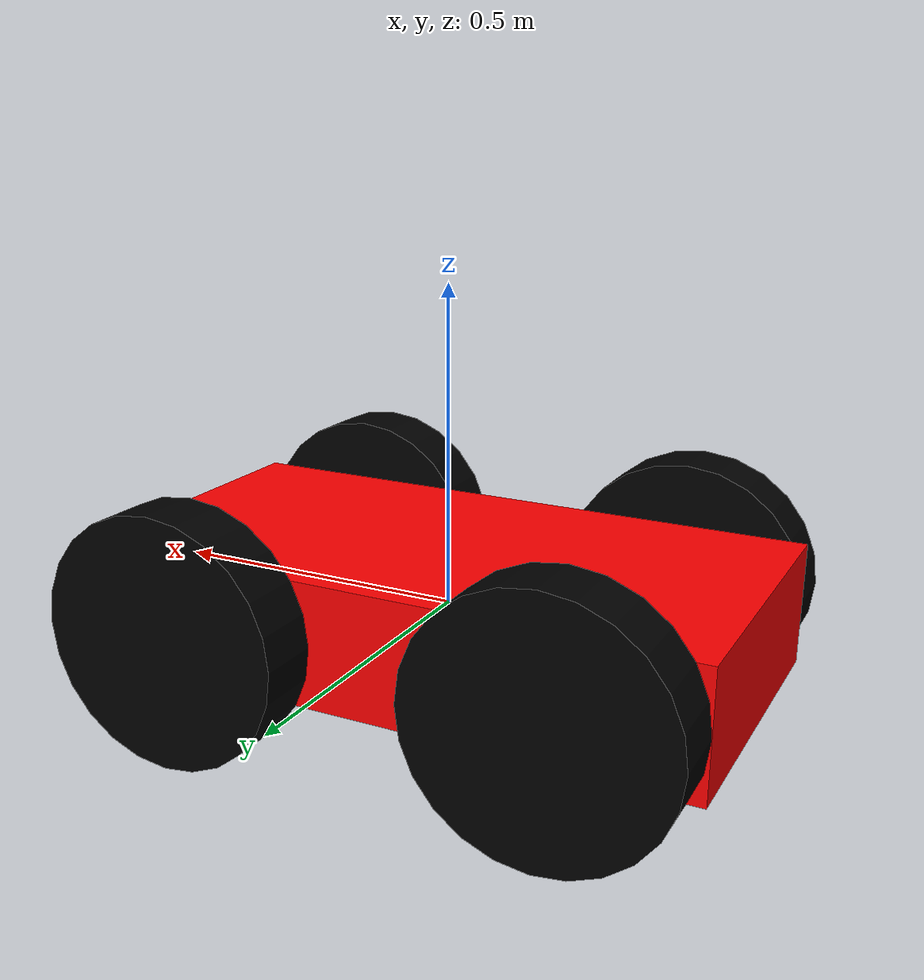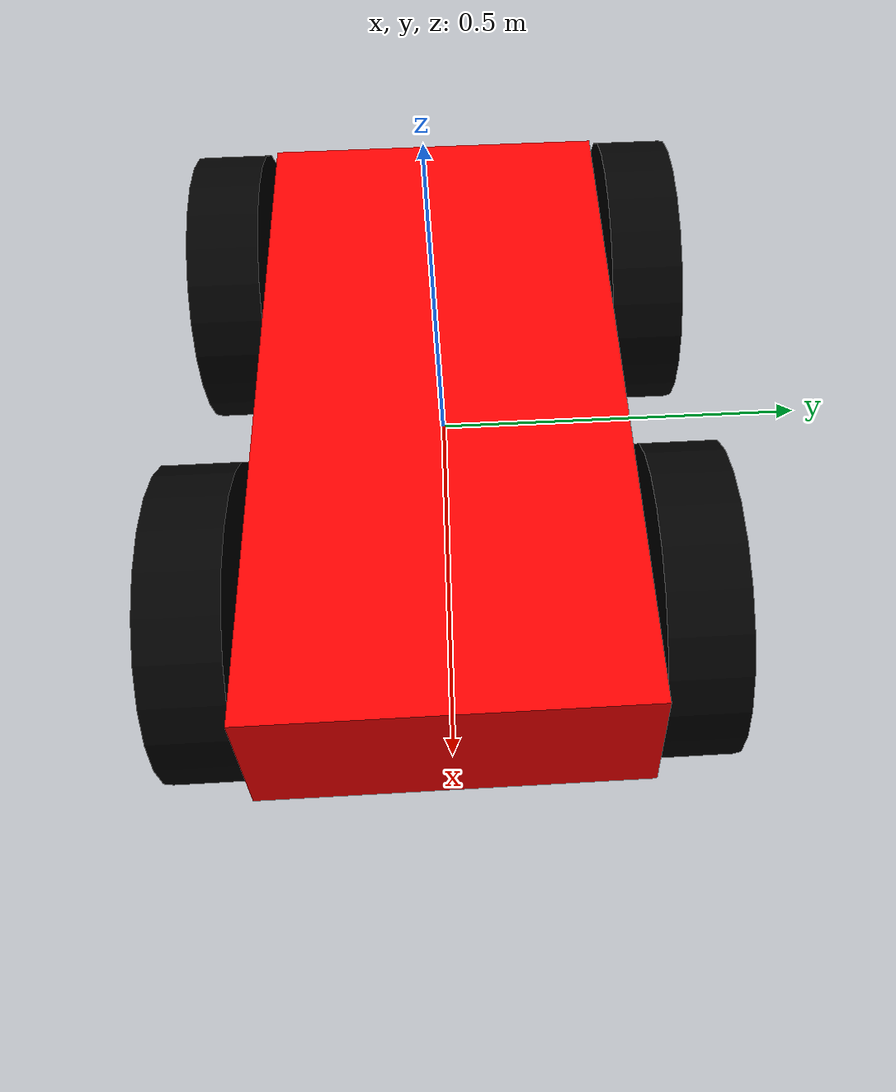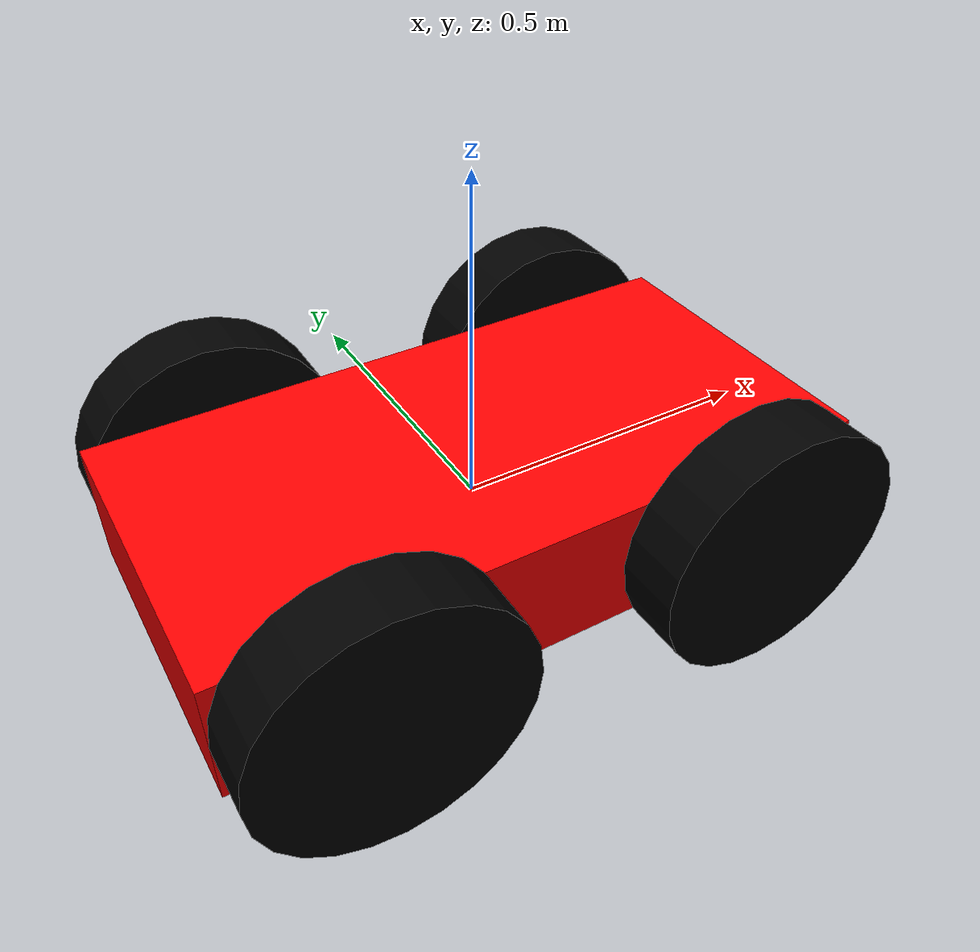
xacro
<?xml version="1.0"?>
<robot name="rbo" xmlns:xacro="http://www.ros.org/wiki/xacro">
    <!-- variables -->
    <xacro:property name="PI" value="3.1415926"/>
    <xacro:property name="base_length" value="1.0"/>
    <xacro:property name="base_width"  value="0.5"/>
    <xacro:property name="base_height" value="0.2"/>
    <xacro:property name="wheel_length" value="0.1"/>
    <xacro:property name="wheel_radius" value="0.2"/>

    <xacro:macro name="default_inertial" params="mass">
        <inertial>
            <mass value="${mass}" />
            <inertia ixx="1.0" ixy="0.0" ixz="0.0" iyy="1.0" iyz="0.0" izz="1.0" />
        </inertial>
    </xacro:macro>

    <material name="red">
        <color rgba="1 0 0 1"/>
    </material>

    <material name="black">
        <color rgba="0 0 0 1"/>
    </material>

    <!-- geometry -->
    <xacro:macro name="cylinder_geometry" params="l r">
        <geometry>
            <cylinder length="${l}" radius="${r}"/>
        </geometry>
    </xacro:macro>

    <xacro:macro name="box_geometry" params="l w h">
        <geometry>
            <box size="${l} ${w} ${h}"/>
        </geometry>
    </xacro:macro>

    <!-- origin -->
    <xacro:macro name="origin_macro" params="xyz rpy">
        <origin xyz="${xyz}" rpy="${rpy}"/>
    </xacro:macro>

    <!-- ros_control plugin -->
    <gazebo>
        <plugin name="gazebo_ros_control" filename="libgazebo_ros_control.so">
            <robotNamespace>/</robotNamespace>
            <robotSimType>gazebo_ros_control/DefaultRobotHWSim</robotSimType>
        </plugin>
    </gazebo>

    <!-- link -->
    <link name="base_link">
        <visual>
            <xacro:box_geometry l="${base_length}" w="${base_width}" h="${base_height}"/>
            <xacro:origin_macro xyz="0 0 0" rpy="0 0 0"/>
            <material name="red"/>
        </visual>

        <collision>
            <xacro:box_geometry l="${base_length}" w="${base_width}" h="${base_height}"/>
            <xacro:origin_macro xyz="0 0 0" rpy="0 0 0"/>
        </collision>

        <xacro:default_inertial mass="5.0"/>
    </link>

    <!-- joint -->
    <xacro:macro name="base_wheel_joint" params="wheel_name front_end right_left">
        <link name="${wheel_name}">
            <visual>
                <xacro:cylinder_geometry l="${wheel_length}" r="${wheel_radius}"/>
                <xacro:origin_macro xyz="0 0 0" rpy="${PI/2} 0 0"/>
                <material name="black"/>
            </visual>

            <collision>
                <xacro:cylinder_geometry l="${wheel_length}" r="${wheel_radius}"/>
                <xacro:origin_macro xyz="0 0 0" rpy="${PI/2} 0 0"/>
            </collision>

            <xacro:default_inertial mass="1.0"/>
        </link>

        <joint name="base_${wheel_name}" type="continuous">
            <origin xyz="${int(front_end)*base_length*0.3} ${int(right_left)*(base_width*0.5+wheel_length*0.5)} 0.0" rpy="0 0 0"/>
            <axis xyz="0 1 0"/>
            <parent link="base_link"/>
            <child link="${wheel_name}"/>
            <dynamics damping="0.7"/>
            <limit velocity="0.5" effort="1000"/>
        </joint>

        <gazebo reference="${wheel_name}">
            <mu1>200.0</mu1>
            <mu2>100.0</mu2>
            <kp value="10000000.0" />
            <kd value="1.0" />
            <material>Gazebo/Black</material>
        </gazebo>

        <transmission name="${wheel_name}_transmission">
            <type>transmission_interface/SimpleTransmission</type>
            <joint name="base_${wheel_name}">
                <hardwareInterface>hardware_interface/VelocityJointInterface</hardwareInterface>
            </joint>
            <actuator name="${wheel_name}_motor">
                <hardwareInterface>hardware_interface/VelocityJointInterface</hardwareInterface>
                <mechanicalReducction>1</mechanicalReducction>
            </actuator>
        </transmission>
    </xacro:macro>

    <xacro:base_wheel_joint wheel_name="fl_wheel" front_end="+1" right_left="+1"/>
    <xacro:base_wheel_joint wheel_name="fr_wheel" front_end="+1" right_left="-1"/>
    <xacro:base_wheel_joint wheel_name="bl_wheel" front_end="-1" right_left="+1"/>
    <xacro:base_wheel_joint wheel_name="br_wheel" front_end="-1" right_left="-1"/>

    <!-- world link -->

    <!-- material in gazebo -->
    <gazebo reference="base_link">
        <material>Gazebo/Red</material>
    </gazebo>

</robot>
